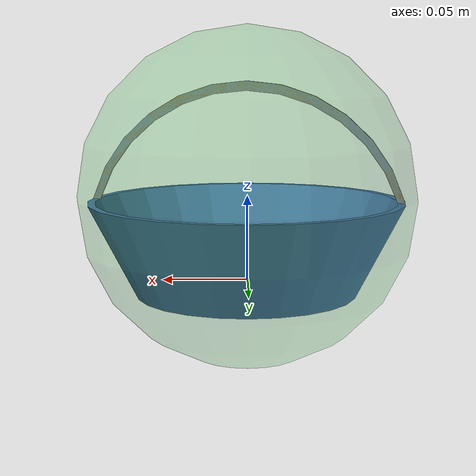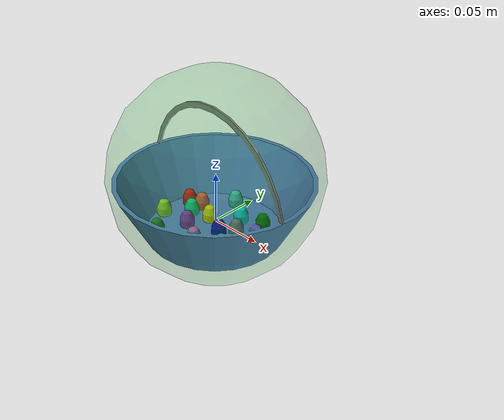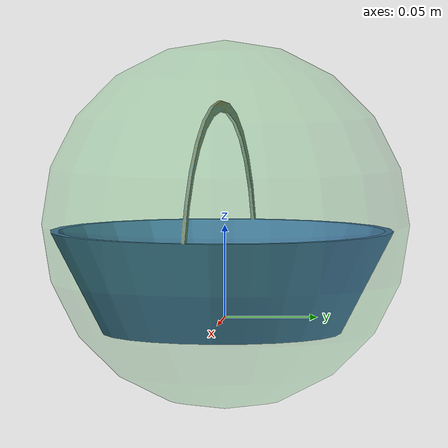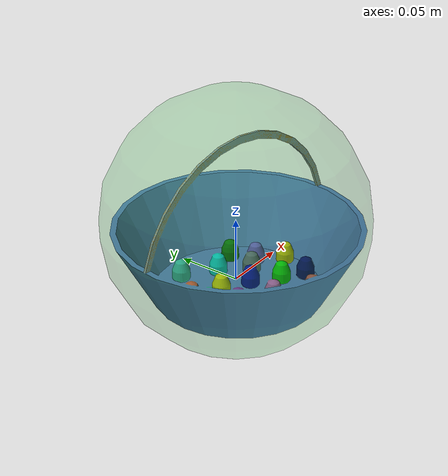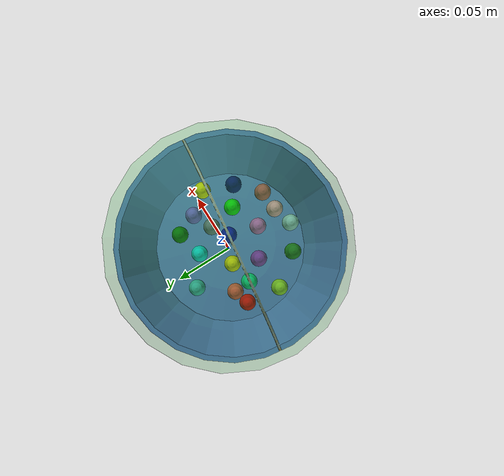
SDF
<?xml version="1.0" ?>
<sdf version="1.4">
  <model name="basket">

    <static>true</static>

    <link name="link">

      <inertial>
        <pose>0 0 0.0 0 0 0</pose>
        <mass>0.3</mass>
        <inertia>
          <ixx>0.00469225</ixx>
          <ixy>0.00469225</ixy><iyy>0.0</iyy>
          <ixz>0.00626477</ixz><iyz>0.0</iyz><izz>0.0</izz>
        </inertia>
      </inertial>

      <visual name="visual1">
        <cast_shadows>false</cast_shadows>
        <geometry>
          <mesh>
            <uri>model://custom_basket/meshes/model.dae</uri>
            <scale>0.3 0.3 0.3</scale>
          </mesh>
        </geometry>
      </visual>

      <visual name="visual2">
        <pose>0 0 0.05 0 0 0</pose>
        <cast_shadows>false</cast_shadows>
        <transparency>0.75</transparency>
        <geometry>
          <sphere>
            <radius>0.10</radius>
          </sphere>
        </geometry>
        <material>
          <script>
            <uri>file://media/materials/scripts/gazebo.material</uri>
            <name>Gazebo/Green</name>
          </script>
        </material>
      </visual>

      <collision name="collision">
        <geometry>
          <mesh>
            <uri>model://custom_basket/meshes/model.dae</uri>
            <scale>0.3 0.3 0.3</scale>
          </mesh>
        </geometry>
      </collision>

    </link>
  </model>
</sdf>
